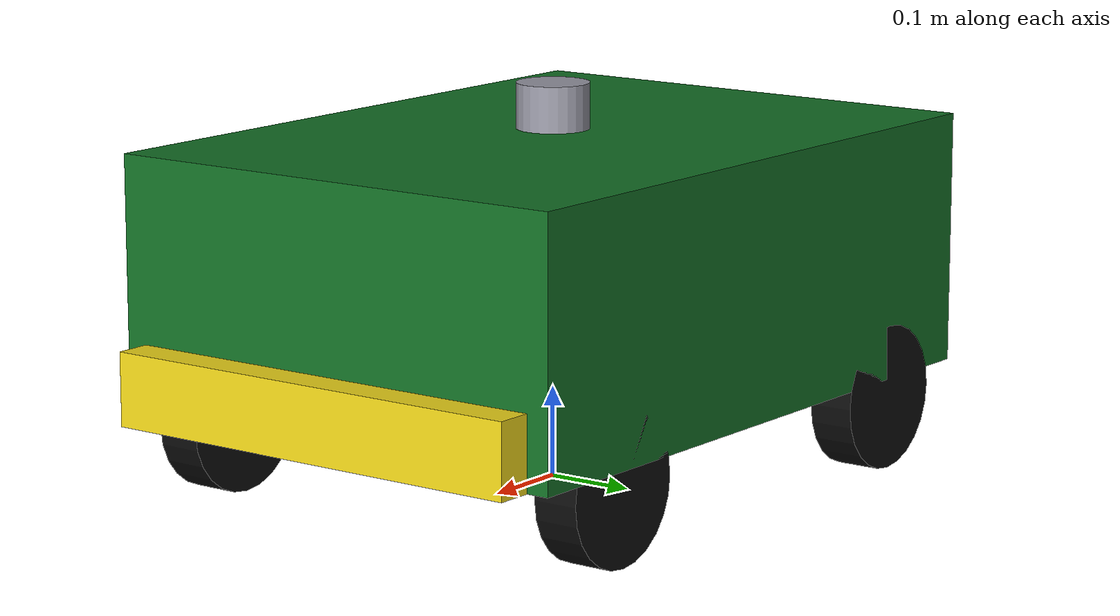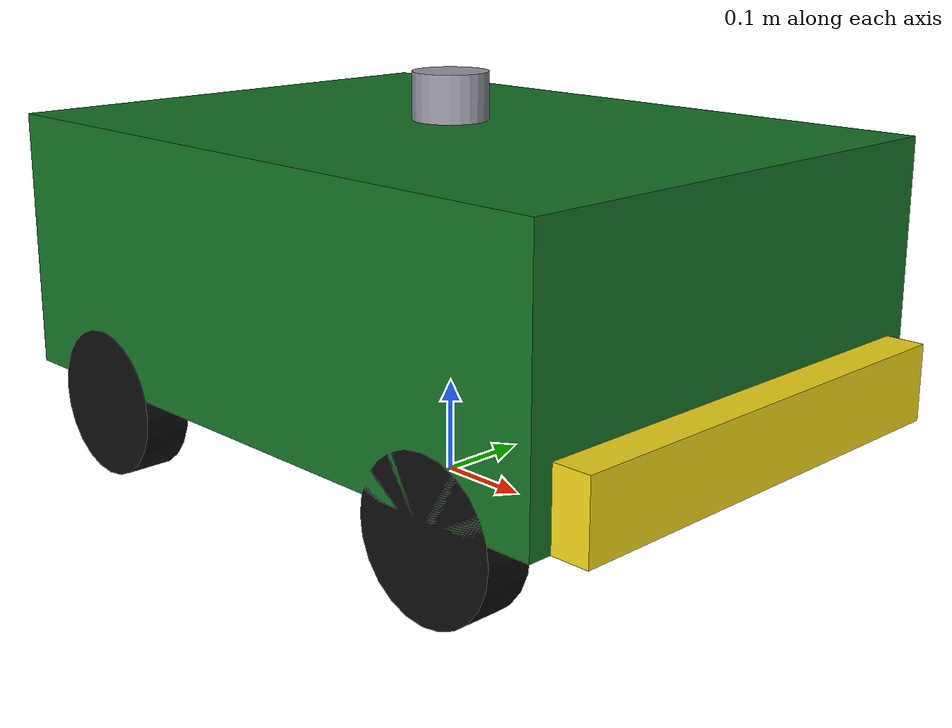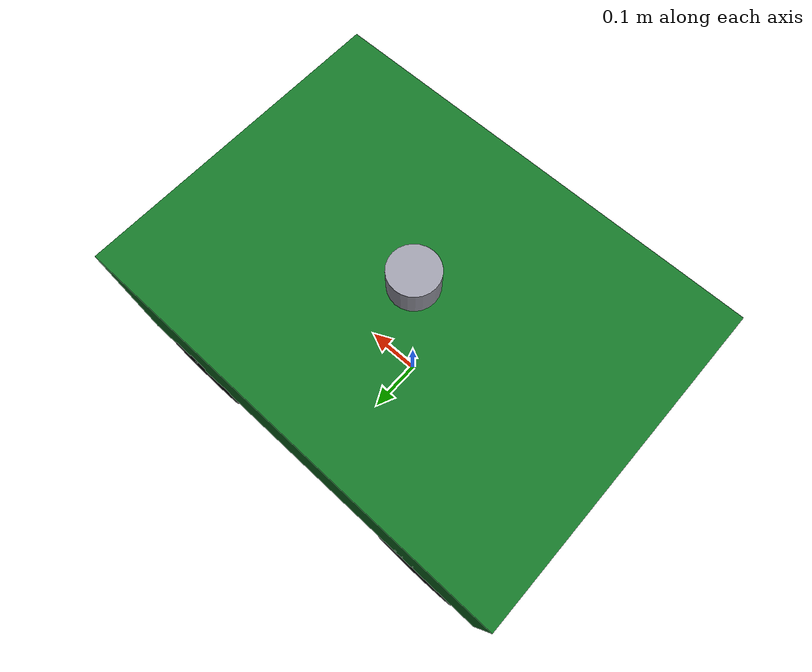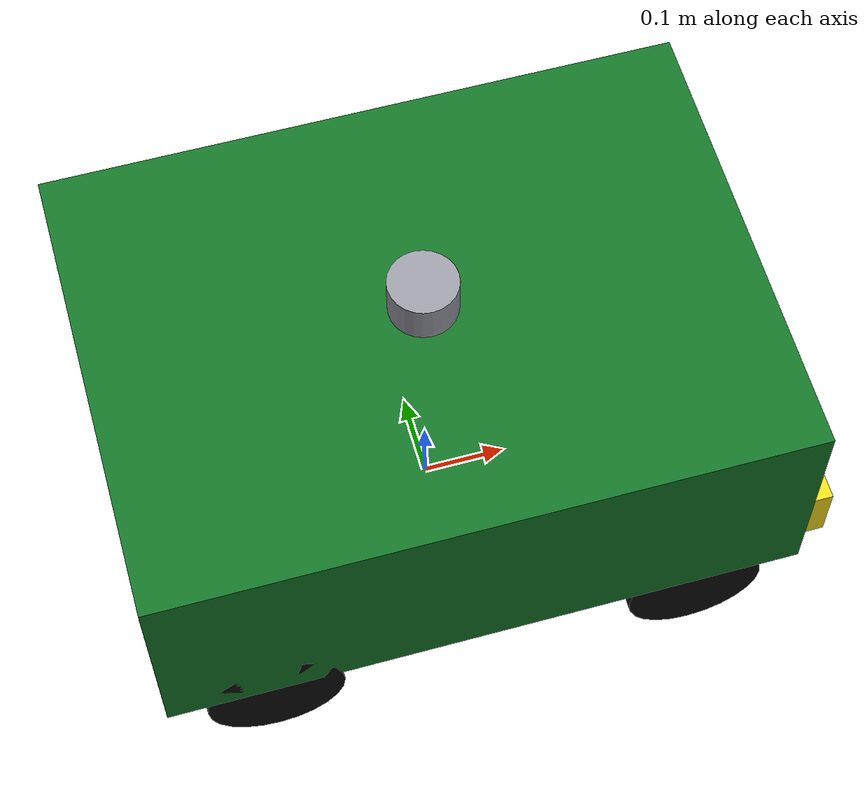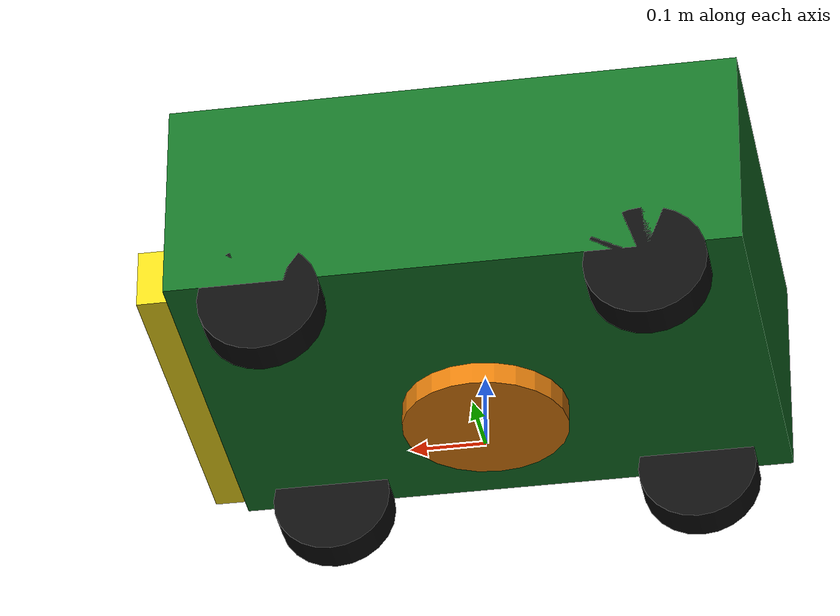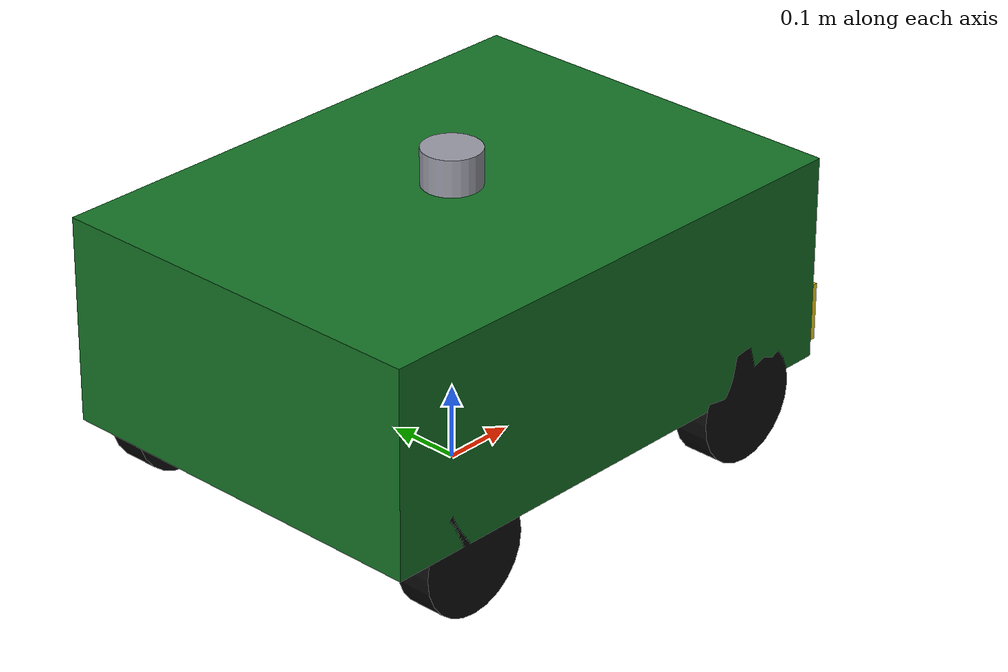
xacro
<?xml version="1.0"?>
<robot name="intelligent_mower" xmlns:xacro="http://www.ros.org/wiki/xacro">
  <xacro:property name="PI" value="3.141592653589793"/>

  <!-- Chassis: 750 x 550 x 280 mm, ~16 kg -->
  <xacro:property name="body_length" value="0.75"/>
  <xacro:property name="body_width" value="0.55"/>
  <xacro:property name="body_height" value="0.28"/>
  <xacro:property name="body_mass" value="16.0"/>

  <!-- Wheels: 4-wheel skid-steer -->
  <xacro:property name="wheel_radius" value="0.08"/>
  <xacro:property name="wheel_width" value="0.05"/>
  <xacro:property name="wheel_mass" value="0.5"/>
  <xacro:property name="track_width" value="0.50"/>
  <xacro:property name="wheelbase" value="0.50"/>

  <!-- Cutter: 220 mm diameter -->
  <xacro:property name="cutter_radius" value="0.11"/>

  <!-- Stereo camera baseline -->
  <xacro:property name="stereo_baseline" value="0.12"/>

  <!-- Colors -->
  <material name="body_green"><color rgba="0.08 0.45 0.15 1"/></material>
  <material name="wheel_black"><color rgba="0.05 0.05 0.05 1"/></material>
  <material name="sensor_gray"><color rgba="0.6 0.6 0.65 1"/></material>
  <material name="cutter_orange"><color rgba="0.9 0.5 0.05 1"/></material>
  <material name="bumper_yellow"><color rgba="0.95 0.85 0.1 1"/></material>

  <!-- Inertia macros -->
  <xacro:macro name="box_inertia" params="mass x y z">
    <inertial>
      <mass value="${mass}"/>
      <inertia
        ixx="${mass*(y*y+z*z)/12.0}" ixy="0" ixz="0"
        iyy="${mass*(x*x+z*z)/12.0}" iyz="0"
        izz="${mass*(x*x+y*y)/12.0}"/>
    </inertial>
  </xacro:macro>

  <xacro:macro name="cylinder_inertia" params="mass r l">
    <inertial>
      <mass value="${mass}"/>
      <inertia
        ixx="${mass*(3*r*r+l*l)/12.0}" ixy="0" ixz="0"
        iyy="${mass*(3*r*r+l*l)/12.0}" iyz="0"
        izz="${mass*r*r/2.0}"/>
    </inertial>
  </xacro:macro>

  <!-- Wheel macro -->
  <xacro:macro name="wheel" params="name x y">
    <link name="${name}_link">
      <xacro:cylinder_inertia mass="${wheel_mass}" r="${wheel_radius}" l="${wheel_width}"/>
      <visual>
        <origin rpy="${PI/2} 0 0"/>
        <geometry><cylinder radius="${wheel_radius}" length="${wheel_width}"/></geometry>
        <material name="wheel_black"/>
      </visual>
      <collision>
        <origin rpy="${PI/2} 0 0"/>
        <geometry><cylinder radius="${wheel_radius}" length="${wheel_width}"/></geometry>
      </collision>
    </link>
    <joint name="${name}_joint" type="continuous">
      <parent link="base_link"/>
      <child link="${name}_link"/>
      <origin xyz="${x} ${y} ${wheel_radius}"/>
      <axis xyz="0 1 0"/>
      <dynamics damping="0.05" friction="0.02"/>
    </joint>
    <gazebo reference="${name}_link">
      <mu1>1.2</mu1>
      <mu2>0.1</mu2>
      <fdir1>1 0 0</fdir1>
    </gazebo>
  </xacro:macro>

  <!-- ==================== Links & Joints ==================== -->

  <link name="base_footprint"/>

  <link name="base_link">
    <xacro:box_inertia mass="${body_mass}" x="${body_length}" y="${body_width}" z="${body_height}"/>
    <visual>
      <origin xyz="0 0 ${body_height/2 + wheel_radius + 0.02}"/>
      <geometry><box size="${body_length} ${body_width} ${body_height}"/></geometry>
      <material name="body_green"/>
    </visual>
    <collision>
      <origin xyz="0 0 ${body_height/2 + wheel_radius + 0.02}"/>
      <geometry><box size="${body_length} ${body_width} ${body_height}"/></geometry>
    </collision>
  </link>

  <joint name="base_footprint_joint" type="fixed">
    <parent link="base_footprint"/>
    <child link="base_link"/>
  </joint>

  <!-- Four wheels -->
  <xacro:wheel name="front_left_wheel" x="${wheelbase/2}" y="${track_width/2}"/>
  <xacro:wheel name="front_right_wheel" x="${wheelbase/2}" y="-${track_width/2}"/>
  <xacro:wheel name="rear_left_wheel" x="-${wheelbase/2}" y="${track_width/2}"/>
  <xacro:wheel name="rear_right_wheel" x="-${wheelbase/2}" y="-${track_width/2}"/>

  <!-- Cutter deck (under the body) -->
  <link name="cutter_deck_link">
    <xacro:cylinder_inertia mass="1.5" r="${cutter_radius}" l="0.03"/>
    <visual>
      <geometry><cylinder radius="${cutter_radius}" length="0.03"/></geometry>
      <material name="cutter_orange"/>
    </visual>
    <collision>
      <geometry><cylinder radius="${cutter_radius}" length="0.03"/></geometry>
    </collision>
  </link>
  <joint name="cutter_deck_joint" type="fixed">
    <parent link="base_link"/>
    <child link="cutter_deck_link"/>
    <origin xyz="0 0 0.04"/>
  </joint>

  <!-- Front bumper -->
  <link name="bumper_link">
    <xacro:box_inertia mass="0.2" x="0.04" y="${body_width - 0.05}" z="0.08"/>
    <visual>
      <geometry><box size="0.04 ${body_width - 0.05} 0.08"/></geometry>
      <material name="bumper_yellow"/>
    </visual>
    <collision>
      <geometry><box size="0.04 ${body_width - 0.05} 0.08"/></geometry>
    </collision>
  </link>
  <joint name="bumper_joint" type="fixed">
    <parent link="base_link"/>
    <child link="bumper_link"/>
    <origin xyz="${body_length/2 + 0.02} 0 ${wheel_radius + 0.06}"/>
  </joint>

  <!-- ==================== Sensors ==================== -->

  <!-- 360° LiDAR (top center, like Velodyne/Hokuyo puck) -->
  <link name="lidar_link">
    <xacro:cylinder_inertia mass="0.18" r="0.04" l="0.05"/>
    <visual>
      <geometry><cylinder radius="0.04" length="0.05"/></geometry>
      <material name="sensor_gray"/>
    </visual>
    <collision>
      <geometry><cylinder radius="0.04" length="0.05"/></geometry>
    </collision>
  </link>
  <joint name="lidar_joint" type="fixed">
    <parent link="base_link"/>
    <child link="lidar_link"/>
    <origin xyz="0 0 ${body_height + wheel_radius + 0.05}"/>
  </joint>

  <!-- IMU (center of body) -->
  <link name="imu_link">
    <xacro:box_inertia mass="0.03" x="0.03" y="0.02" z="0.01"/>
    <visual>
      <geometry><box size="0.03 0.02 0.01"/></geometry>
      <material name="sensor_gray"/>
    </visual>
  </link>
  <joint name="imu_joint" type="fixed">
    <parent link="base_link"/>
    <child link="imu_link"/>
    <origin xyz="0 0 ${wheel_radius + 0.05}"/>
  </joint>

  <!-- Stereo camera - left lens -->
  <link name="camera_left_link">
    <xacro:box_inertia mass="0.05" x="0.03" y="0.03" z="0.03"/>
    <visual>
      <geometry><box size="0.03 0.03 0.03"/></geometry>
      <material name="sensor_gray"/>
    </visual>
  </link>
  <joint name="camera_left_joint" type="fixed">
    <parent link="base_link"/>
    <child link="camera_left_link"/>
    <origin xyz="${body_length/2 - 0.03} ${stereo_baseline/2} ${body_height + wheel_radius - 0.02}"/>
  </joint>

  <!-- Stereo camera - right lens -->
  <link name="camera_right_link">
    <xacro:box_inertia mass="0.05" x="0.03" y="0.03" z="0.03"/>
    <visual>
      <geometry><box size="0.03 0.03 0.03"/></geometry>
      <material name="sensor_gray"/>
    </visual>
  </link>
  <joint name="camera_right_joint" type="fixed">
    <parent link="base_link"/>
    <child link="camera_right_link"/>
    <origin xyz="${body_length/2 - 0.03} -${stereo_baseline/2} ${body_height + wheel_radius - 0.02}"/>
  </joint>

  <!-- Stereo camera optical frames (Z forward, X right, Y down for camera convention) -->
  <link name="camera_left_optical"/>
  <joint name="camera_left_optical_joint" type="fixed">
    <parent link="camera_left_link"/>
    <child link="camera_left_optical"/>
    <origin rpy="-${PI/2} 0 -${PI/2}"/>
  </joint>

  <link name="camera_right_optical"/>
  <joint name="camera_right_optical_joint" type="fixed">
    <parent link="camera_right_link"/>
    <child link="camera_right_optical"/>
    <origin rpy="-${PI/2} 0 -${PI/2}"/>
  </joint>

  <!-- ==================== Gazebo Sim Plugins ==================== -->

  <!-- 360° 2D LiDAR -->
  <gazebo reference="lidar_link">
    <sensor name="lidar" type="gpu_lidar">
      <always_on>true</always_on>
      <update_rate>10</update_rate>
      <topic>/scan</topic>
      <lidar>
        <scan>
          <horizontal>
            <samples>720</samples>
            <resolution>1</resolution>
            <min_angle>-${PI}</min_angle>
            <max_angle>${PI}</max_angle>
          </horizontal>
        </scan>
        <range>
          <min>0.12</min>
          <max>12.0</max>
          <resolution>0.01</resolution>
        </range>
        <noise>
          <type>gaussian</type>
          <mean>0.0</mean>
          <stddev>0.005</stddev>
        </noise>
      </lidar>
    </sensor>
  </gazebo>

  <!-- IMU sensor -->
  <gazebo reference="imu_link">
    <sensor name="imu" type="imu">
      <always_on>true</always_on>
      <update_rate>100</update_rate>
      <topic>/imu</topic>
      <imu>
        <angular_velocity>
          <x><noise type="gaussian"><mean>0</mean><stddev>0.0002</stddev></noise></x>
          <y><noise type="gaussian"><mean>0</mean><stddev>0.0002</stddev></noise></y>
          <z><noise type="gaussian"><mean>0</mean><stddev>0.0002</stddev></noise></z>
        </angular_velocity>
        <linear_acceleration>
          <x><noise type="gaussian"><mean>0</mean><stddev>0.017</stddev></noise></x>
          <y><noise type="gaussian"><mean>0</mean><stddev>0.017</stddev></noise></y>
          <z><noise type="gaussian"><mean>0</mean><stddev>0.017</stddev></noise></z>
        </linear_acceleration>
      </imu>
    </sensor>
  </gazebo>

  <!-- Stereo camera - left -->
  <gazebo reference="camera_left_link">
    <sensor name="stereo_left" type="camera">
      <always_on>true</always_on>
      <update_rate>15</update_rate>
      <topic>/stereo/left/image_raw</topic>
      <camera>
        <horizontal_fov>1.3962634</horizontal_fov>
        <image>
          <width>640</width>
          <height>480</height>
          <format>R8G8B8</format>
        </image>
        <clip>
          <near>0.05</near>
          <far>15.0</far>
        </clip>
        <noise>
          <type>gaussian</type>
          <mean>0.0</mean>
          <stddev>0.007</stddev>
        </noise>
      </camera>
    </sensor>
  </gazebo>

  <!-- Stereo camera - right -->
  <gazebo reference="camera_right_link">
    <sensor name="stereo_right" type="camera">
      <always_on>true</always_on>
      <update_rate>15</update_rate>
      <topic>/stereo/right/image_raw</topic>
      <camera>
        <horizontal_fov>1.3962634</horizontal_fov>
        <image>
          <width>640</width>
          <height>480</height>
          <format>R8G8B8</format>
        </image>
        <clip>
          <near>0.05</near>
          <far>15.0</far>
        </clip>
        <noise>
          <type>gaussian</type>
          <mean>0.0</mean>
          <stddev>0.007</stddev>
        </noise>
      </camera>
    </sensor>
  </gazebo>

  <!-- Diff-drive (skid-steer with 4 wheels), max speed 1.0 m/s -->
  <gazebo>
    <plugin filename="gz-sim-diff-drive-system" name="gz::sim::systems::DiffDrive">
      <left_joint>front_left_wheel_joint</left_joint>
      <left_joint>rear_left_wheel_joint</left_joint>
      <right_joint>front_right_wheel_joint</right_joint>
      <right_joint>rear_right_wheel_joint</right_joint>
      <wheel_separation>${track_width}</wheel_separation>
      <wheel_radius>${wheel_radius}</wheel_radius>
      <topic>/cmd_vel</topic>
      <odom_topic>/odom</odom_topic>
      <tf_topic>/tf</tf_topic>
      <frame_id>odom</frame_id>
      <child_frame_id>base_footprint</child_frame_id>
      <odom_publish_frequency>30</odom_publish_frequency>
      <min_velocity>-1.0</min_velocity>
      <max_velocity>1.0</max_velocity>
      <min_acceleration>-1.5</min_acceleration>
      <max_acceleration>1.5</max_acceleration>
    </plugin>
    <plugin filename="gz-sim-joint-state-publisher-system" name="gz::sim::systems::JointStatePublisher">
      <topic>/joint_states</topic>
    </plugin>
  </gazebo>

</robot>
